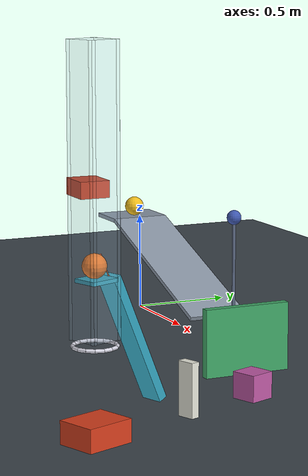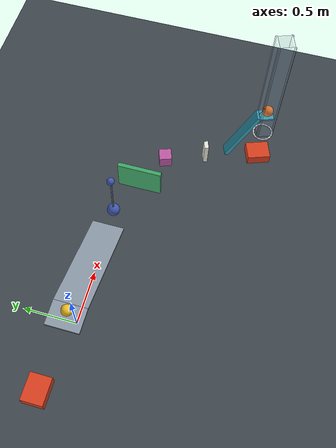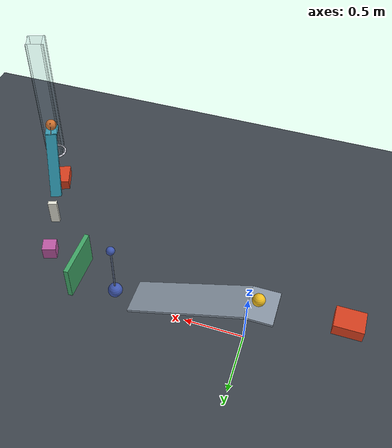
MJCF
<mujoco model="passive_chain_reaction">
  <compiler angle="degree" autolimits="true"/>
  <option timestep="0.002" gravity="0 0 -9.81" integrator="implicitfast" solver="Newton" iterations="100" cone="elliptic" impratio="10"/>
  <size njmax="2000" nconmax="500"/>
  <visual>
    <global azimuth="135" elevation="-25"/>
    <map znear="0.01" zfar="30"/>
  </visual>

  <!-- Sliding friction is 0.68. Small torsional and rolling friction stop residual ball motion. -->
  <!-- Contact damping ratio 0.6901 approximates restitution 0.05 for an isolated linear impact. -->
  <!-- Joint and tendon preload are potential energy only; all initial velocities are zero. -->

  <worldbody>
    <light name="main_light" pos="1 -1 5" dir="0 0 -1" diffuse="0.9 0.9 0.9"/>
    <geom name="floor" type="plane" pos="0 0 0" size="6 6 0.1" friction="0.68 0.005 0.002" condim="6" solref="0.008 0.6901" solimp="0.95 0.99 0.001" rgba="0.24 0.27 0.30 1"/>

    <!-- Compression-only cart spring: initial length 0.01, relaxed length 0.21. -->
    <site name="cart1_spring_anchor" pos="-0.745 0 0.552020" size="0.004" rgba="0.8 0.3 0.1 1"/>

    <!-- Passive over-centre spring anchors, initially collinear with their moving sites. -->
    <site name="pendulum1_spring_anchor" pos="1.099693 0 0.16" size="0.004" rgba="0.8 0.3 0.1 1"/>
    <site name="door1_spring_anchor" pos="1.494353 -0.05 0.165" size="0.004" rgba="0.8 0.3 0.1 1"/>
    <site name="lever1_spring_anchor" pos="2.164686 -1.139157 0.760631" size="0.004" rgba="0.8 0.3 0.1 1"/>

    <body name="cart1" pos="-0.735 0 0.552020">
      <joint name="cart1_slide" type="slide" axis="1 0 0" damping="0.20" limited="true" range="0 0.72" solreflimit="0.004 0.6901" solimplimit="0.99 0.999 0.0001"/>
      <geom name="cart1_box" type="box" size="0.11 0.09 0.05" mass="0.50" friction="0.68 0.005 0.002" condim="6" solref="0.008 0.6901" solimp="0.95 0.99 0.001" rgba="0.85 0.25 0.12 1"/>
      <site name="cart1_spring_site" pos="0 0 0" size="0.004" rgba="0.8 0.3 0.1 1"/>
    </body>

    <!-- Flat staging ledge prevents ball1 rolling before cart1 reaches it. -->
    <!-- Ramp surface endpoints: (0,0,0.492020) and (0.939693,0,0.15). -->
    <body name="ramp1" pos="0 0 0">
      <geom name="ramp1_incline" type="box" pos="0.466426 0 0.311613" euler="0 20 0" size="0.50 0.15 0.01" friction="0.68 0.005 0.002" condim="6" solref="0.008 0.6901" solimp="0.95 0.99 0.001" rgba="0.55 0.60 0.66 1"/>
      <geom name="ramp1_staging_ledge" type="box" pos="-0.11 0 0.482020" size="0.11 0.15 0.01" friction="0.68 0.005 0.002" condim="6" solref="0.008 0.6901" solimp="0.95 0.99 0.001" rgba="0.55 0.60 0.66 1"/>
    </body>

    <!-- Cart1's front face initially lies 0.50 m behind ball1's rear surface. -->
    <body name="ball1" pos="-0.075 0 0.542020">
      <freejoint name="ball1_free"/>
      <geom name="ball1_sphere" type="sphere" size="0.05" mass="0.20" friction="0.68 0.005 0.002" condim="6" solref="0.008 0.6901" solimp="0.95 0.99 0.001" rgba="0.95 0.75 0.12 1"/>
    </body>

    <!-- Bob's near surface is 0.10 m beyond the ramp's low edge. -->
    <!-- The rigid pendulum is 0.50 m long and has total mass 0.35 kg. -->
    <body name="pendulum1" pos="1.099693 0 0.66">
      <joint name="pendulum1_hinge" type="hinge" axis="0 -1 0" damping="0.04" limited="true" range="0 40" solreflimit="0.004 0.6901" solimplimit="0.99 0.999 0.0001"/>
      <geom name="pendulum1_hub" type="sphere" size="0.035" mass="0.305" friction="0.68 0.005 0.002" condim="6" solref="0.008 0.6901" solimp="0.95 0.99 0.001" rgba="0.25 0.35 0.70 1"/>
      <geom name="pendulum1_rod" type="capsule" fromto="0 0 0 0 0 -0.50" size="0.008" mass="0.005" friction="0.68 0.005 0.002" condim="6" solref="0.008 0.6901" solimp="0.95 0.99 0.001" rgba="0.35 0.40 0.50 1"/>
      <geom name="pendulum1_bob" type="sphere" pos="0 0 -0.50" size="0.06" mass="0.040" friction="0.68 0.005 0.002" condim="6" solref="0.008 0.6901" solimp="0.95 0.99 0.001" rgba="0.25 0.35 0.70 1"/>
      <site name="pendulum1_spring_site" pos="0 0 -0.40" size="0.004" rgba="0.8 0.3 0.1 1"/>
    </body>

    <!-- Door swings clockwise in plan. Its panel clears the floor by 5 mm. -->
    <!-- Pendulum contact begins near 39 degrees, just before its 40-degree stop. -->
    <body name="door1" pos="1.494353 -0.35 0.005">
      <joint name="door1_hinge" type="hinge" axis="0 0 -1" damping="0.04" limited="true" range="0 70" solreflimit="0.004 0.6901" solimplimit="0.99 0.999 0.0001"/>
      <geom name="door1_panel" type="box" pos="0 0.21 0.16" size="0.02 0.21 0.16" mass="0.45" friction="0.68 0.005 0.002" condim="6" solref="0.008 0.6901" solimp="0.95 0.99 0.001" rgba="0.25 0.65 0.40 1"/>
      <site name="door1_spring_site" pos="0 0.20 0.16" size="0.004" rgba="0.8 0.3 0.1 1"/>
    </body>

    <!-- Downstream travel direction is (sin(20), -cos(20), 0). -->
    <body name="block1" pos="1.858294 -0.297350 0.06" euler="0 0 -70">
      <freejoint name="block1_free"/>
      <geom name="block1_cube" type="box" size="0.06 0.06 0.06" mass="0.35" friction="0.68 0.005 0.002" condim="6" solref="0.008 0.6901" solimp="0.95 0.99 0.001" rgba="0.75 0.35 0.65 1"/>
    </body>

    <!-- Initial face-to-face distance from block1 to domino1 is 0.32 m. -->
    <body name="domino1" pos="1.995102 -0.673227 0.12" euler="0 0 -70">
      <freejoint name="domino1_free"/>
      <geom name="domino1_box" type="box" size="0.02 0.04 0.12" mass="0.25" friction="0.68 0.005 0.002" condim="6" solref="0.008 0.6901" solimp="0.95 0.99 0.001" rgba="0.92 0.92 0.87 1"/>
    </body>

    <!-- Lever starts at 65 degrees above horizontal; its left end is reachable from the floor. -->
    <!-- The horizontal launch shelf supports ball2 without initial motion. -->
    <!-- Lever joint travel is 45 degrees, ending at an explicit joint-limit stop. -->
    <body name="lever1" pos="2.106869 -0.980305 0.398108" xyaxes="0.144544 -0.397131 0.906308 0.939693 0.342020 0">
      <inertial pos="0 0 0" mass="0.50" diaginertia="0.000483333 0.015066667 0.015416667"/>
      <joint name="lever1_hinge" type="hinge" axis="0 -1 0" damping="0.04" limited="true" range="0 45" solreflimit="0.004 0.6901" solimplimit="0.99 0.999 0.0001"/>
      <geom name="lever1_beam" type="box" size="0.30 0.05 0.02" friction="0.68 0.005 0.002" condim="6" solref="0.008 0.6901" solimp="0.95 0.99 0.001" rgba="0.20 0.65 0.75 1"/>
      <geom name="lever1_launch_shelf" type="box" pos="0.320219 0 -0.062291" xyaxes="0.422618 0 -0.906308 0 1 0" size="0.065 0.055 0.008" friction="0.68 0.005 0.002" condim="6" solref="0.008 0.6901" solimp="0.95 0.99 0.001" rgba="0.20 0.65 0.75 1"/>
      <site name="lever1_spring_site" pos="0.30 0 0" size="0.004" rgba="0.8 0.3 0.1 1"/>
    </body>

    <body name="ball2" pos="2.175884 -1.169921 0.72">
      <freejoint name="ball2_free"/>
      <geom name="ball2_sphere" type="sphere" size="0.05" mass="0.20" contype="4" conaffinity="5" friction="0.68 0.005 0.002" condim="6" solref="0.008 0.6901" solimp="0.95 0.99 0.001" rgba="0.95 0.45 0.10 1"/>
    </body>

    <!-- Ring centre is 0.32 m below ball2's initial centre. -->
    <!-- Sixteen capsule segments have a 0.16 m minimum clear diameter. -->
    <!-- Guides collide with ball2, but not with the lever or other upstream objects. -->
    <body name="ring1" pos="2.175884 -1.169921 0.40">
      <geom name="ring1_segment_00" type="capsule" fromto="0.089724 0 0 0.082894 0.034336 0" size="0.008" contype="4" conaffinity="4" friction="0.68 0.005 0.002" condim="6" solref="0.008 0.6901" solimp="0.95 0.99 0.001" rgba="0.85 0.85 0.90 1"/>
      <geom name="ring1_segment_01" type="capsule" fromto="0.082894 0.034336 0 0.063444 0.063444 0" size="0.008" contype="4" conaffinity="4" friction="0.68 0.005 0.002" condim="6" solref="0.008 0.6901" solimp="0.95 0.99 0.001" rgba="0.85 0.85 0.90 1"/>
      <geom name="ring1_segment_02" type="capsule" fromto="0.063444 0.063444 0 0.034336 0.082894 0" size="0.008" contype="4" conaffinity="4" friction="0.68 0.005 0.002" condim="6" solref="0.008 0.6901" solimp="0.95 0.99 0.001" rgba="0.85 0.85 0.90 1"/>
      <geom name="ring1_segment_03" type="capsule" fromto="0.034336 0.082894 0 0 0.089724 0" size="0.008" contype="4" conaffinity="4" friction="0.68 0.005 0.002" condim="6" solref="0.008 0.6901" solimp="0.95 0.99 0.001" rgba="0.85 0.85 0.90 1"/>
      <geom name="ring1_segment_04" type="capsule" fromto="0 0.089724 0 -0.034336 0.082894 0" size="0.008" contype="4" conaffinity="4" friction="0.68 0.005 0.002" condim="6" solref="0.008 0.6901" solimp="0.95 0.99 0.001" rgba="0.85 0.85 0.90 1"/>
      <geom name="ring1_segment_05" type="capsule" fromto="-0.034336 0.082894 0 -0.063444 0.063444 0" size="0.008" contype="4" conaffinity="4" friction="0.68 0.005 0.002" condim="6" solref="0.008 0.6901" solimp="0.95 0.99 0.001" rgba="0.85 0.85 0.90 1"/>
      <geom name="ring1_segment_06" type="capsule" fromto="-0.063444 0.063444 0 -0.082894 0.034336 0" size="0.008" contype="4" conaffinity="4" friction="0.68 0.005 0.002" condim="6" solref="0.008 0.6901" solimp="0.95 0.99 0.001" rgba="0.85 0.85 0.90 1"/>
      <geom name="ring1_segment_07" type="capsule" fromto="-0.082894 0.034336 0 -0.089724 0 0" size="0.008" contype="4" conaffinity="4" friction="0.68 0.005 0.002" condim="6" solref="0.008 0.6901" solimp="0.95 0.99 0.001" rgba="0.85 0.85 0.90 1"/>
      <geom name="ring1_segment_08" type="capsule" fromto="-0.089724 0 0 -0.082894 -0.034336 0" size="0.008" contype="4" conaffinity="4" friction="0.68 0.005 0.002" condim="6" solref="0.008 0.6901" solimp="0.95 0.99 0.001" rgba="0.85 0.85 0.90 1"/>
      <geom name="ring1_segment_09" type="capsule" fromto="-0.082894 -0.034336 0 -0.063444 -0.063444 0" size="0.008" contype="4" conaffinity="4" friction="0.68 0.005 0.002" condim="6" solref="0.008 0.6901" solimp="0.95 0.99 0.001" rgba="0.85 0.85 0.90 1"/>
      <geom name="ring1_segment_10" type="capsule" fromto="-0.063444 -0.063444 0 -0.034336 -0.082894 0" size="0.008" contype="4" conaffinity="4" friction="0.68 0.005 0.002" condim="6" solref="0.008 0.6901" solimp="0.95 0.99 0.001" rgba="0.85 0.85 0.90 1"/>
      <geom name="ring1_segment_11" type="capsule" fromto="-0.034336 -0.082894 0 0 -0.089724 0" size="0.008" contype="4" conaffinity="4" friction="0.68 0.005 0.002" condim="6" solref="0.008 0.6901" solimp="0.95 0.99 0.001" rgba="0.85 0.85 0.90 1"/>
      <geom name="ring1_segment_12" type="capsule" fromto="0 -0.089724 0 0.034336 -0.082894 0" size="0.008" contype="4" conaffinity="4" friction="0.68 0.005 0.002" condim="6" solref="0.008 0.6901" solimp="0.95 0.99 0.001" rgba="0.85 0.85 0.90 1"/>
      <geom name="ring1_segment_13" type="capsule" fromto="0.034336 -0.082894 0 0.063444 -0.063444 0" size="0.008" contype="4" conaffinity="4" friction="0.68 0.005 0.002" condim="6" solref="0.008 0.6901" solimp="0.95 0.99 0.001" rgba="0.85 0.85 0.90 1"/>
      <geom name="ring1_segment_14" type="capsule" fromto="0.063444 -0.063444 0 0.082894 -0.034336 0" size="0.008" contype="4" conaffinity="4" friction="0.68 0.005 0.002" condim="6" solref="0.008 0.6901" solimp="0.95 0.99 0.001" rgba="0.85 0.85 0.90 1"/>
      <geom name="ring1_segment_15" type="capsule" fromto="0.082894 -0.034336 0 0.089724 0 0" size="0.008" contype="4" conaffinity="4" friction="0.68 0.005 0.002" condim="6" solref="0.008 0.6901" solimp="0.95 0.99 0.001" rgba="0.85 0.85 0.90 1"/>
      <geom name="ring1_guide_forward" type="box" pos="0.021547 -0.059201 0.6125" xyaxes="0.342020 -0.939693 0 0.939693 0.342020 0" size="0.006 0.075 0.5875" contype="4" conaffinity="4" friction="0.68 0.005 0.002" condim="6" solref="0.008 0.6901" solimp="0.95 0.99 0.001" rgba="0.65 0.80 0.90 0.18"/>
      <geom name="ring1_guide_backward" type="box" pos="-0.021547 0.059201 0.6125" xyaxes="0.342020 -0.939693 0 0.939693 0.342020 0" size="0.006 0.075 0.5875" contype="4" conaffinity="4" friction="0.68 0.005 0.002" condim="6" solref="0.008 0.6901" solimp="0.95 0.99 0.001" rgba="0.65 0.80 0.90 0.18"/>
      <geom name="ring1_guide_left" type="box" pos="0.059201 0.021547 0.6125" xyaxes="0.342020 -0.939693 0 0.939693 0.342020 0" size="0.075 0.006 0.5875" contype="4" conaffinity="4" friction="0.68 0.005 0.002" condim="6" solref="0.008 0.6901" solimp="0.95 0.99 0.001" rgba="0.65 0.80 0.90 0.18"/>
      <geom name="ring1_guide_right" type="box" pos="-0.059201 -0.021547 0.6125" xyaxes="0.342020 -0.939693 0 0.939693 0.342020 0" size="0.075 0.006 0.5875" contype="4" conaffinity="4" friction="0.68 0.005 0.002" condim="6" solref="0.008 0.6901" solimp="0.95 0.99 0.001" rgba="0.65 0.80 0.90 0.18"/>
    </body>

    <!-- At first contact, ball2's centre is z=0.15: 0.25 m below the ring plane. -->
    <body name="cart2" pos="2.175884 -1.169921 0.05" euler="0 0 -70">
      <joint name="cart2_slide" type="slide" axis="1 0 0" damping="0.20" limited="true" range="-0.5 0.5" solreflimit="0.004 0.6901" solimplimit="0.99 0.999 0.0001"/>
      <geom name="cart2_box" type="box" size="0.11 0.09 0.05" mass="0.50" friction="0.68 0.005 0.002" condim="6" solref="0.008 0.6901" solimp="0.95 0.99 0.001" rgba="0.85 0.25 0.12 1"/>
    </body>
  </worldbody>

  <tendon>
    <!-- A springlength interval makes this spring disengage after decompression. -->
    <spatial name="cart1_axial_spring" stiffness="18" damping="0" springlength="0.21 2" width="0.003" rgba="0.85 0.35 0.12 1">
      <site site="cart1_spring_anchor"/>
      <site site="cart1_spring_site"/>
    </spatial>
    <!-- Over-centre assists have zero initial torque and require a contact disturbance. -->
    <spatial name="pendulum1_overcentre_spring" stiffness="20" damping="0" springlength="0.22 2" width="0.002" rgba="0.85 0.35 0.12 1">
      <site site="pendulum1_spring_anchor"/>
      <site site="pendulum1_spring_site"/>
    </spatial>
    <spatial name="door1_overcentre_spring" stiffness="70" damping="0" springlength="0.50 2" width="0.002" rgba="0.85 0.35 0.12 1">
      <site site="door1_spring_anchor"/>
      <site site="door1_spring_site"/>
    </spatial>
    <spatial name="lever1_overcentre_spring" stiffness="200" damping="0" springlength="0.35 2" width="0.002" rgba="0.85 0.35 0.12 1">
      <site site="lever1_spring_anchor"/>
      <site site="lever1_spring_site"/>
    </spatial>
  </tendon>

  <!-- Omitted keyframe positions use the model's initial poses; omitted velocities are zero. -->
  <keyframe>
    <key name="start" time="0"/>
  </keyframe>
</mujoco>
